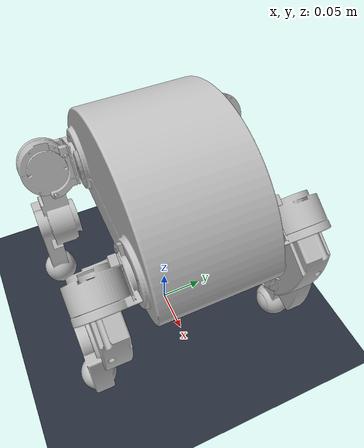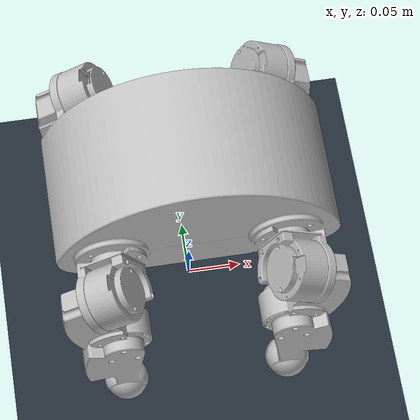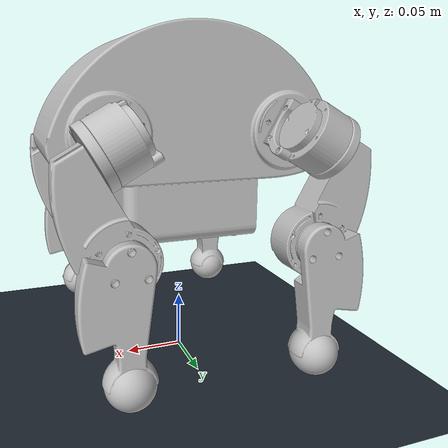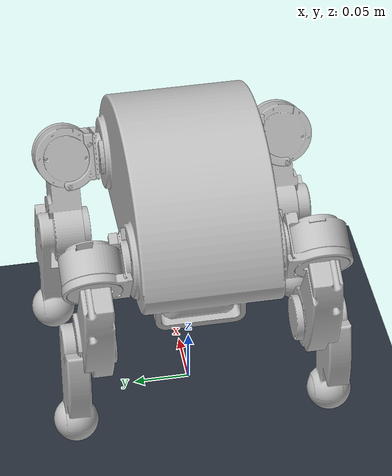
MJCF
<mujoco model="rollingquad_2">
  <compiler angle="radian" autolimits="true" meshdir="." />
  <option timestep="0.001" gravity="0 0 -9.81" integrator="implicitfast" cone="elliptic" iterations="20" ls_iterations="10" />
  <visual>
    <global azimuth="120" elevation="-18" offwidth="960" offheight="720" />
    <headlight ambient="0.35 0.35 0.35" diffuse="0.65 0.65 0.65" specular="0.20 0.20 0.20" />
  </visual>
  <asset>
    <texture type="skybox" builtin="gradient" rgb1=".18 .23 .30" rgb2=".02 .03 .05" width="512" height="512" />
    <texture name="grid" type="2d" builtin="checker" width="512" height="512" rgb1=".18 .22 .27" rgb2=".10 .13 .17" />
    <material name="ground" texture="grid" texrepeat="1 1" texuniform="true" reflectance="0.05" />
    <mesh name="Lower_leg_with_foot_1" content_type="model/stl" file="../meshes/Lower_leg_with_foot_1.stl" />
    <mesh name="Lower_leg_with_foot_1_2" content_type="model/stl" file="../meshes/Lower_leg_with_foot_1_2.stl" />
    <mesh name="Lower_leg_with_foot_mirror_1" content_type="model/stl" file="../meshes/Lower_leg_with_foot_mirror_1.stl" />
    <mesh name="Lower_leg_with_foot_mirror_1_2" content_type="model/stl" file="../meshes/Lower_leg_with_foot_mirror_1_2.stl" />
    <mesh name="Upperleg_with_motor_1" content_type="model/stl" file="../meshes/Upperleg_with_motor_1.stl" />
    <mesh name="Upperleg_with_motor_1_2" content_type="model/stl" file="../meshes/Upperleg_with_motor_1_2.stl" />
    <mesh name="Upperleg_with_motor_mirror_1" content_type="model/stl" file="../meshes/Upperleg_with_motor_mirror_1.stl" />
    <mesh name="Upperleg_with_motor_mirror_1_2" content_type="model/stl" file="../meshes/Upperleg_with_motor_mirror_1_2.stl" />
    <mesh name="abduction_mirror_1" content_type="model/stl" file="../meshes/abduction_mirror_1.stl" />
    <mesh name="abduction_mirror_1_2" content_type="model/stl" file="../meshes/abduction_mirror_1_2.stl" />
    <mesh name="abduction_1" content_type="model/stl" file="../meshes/abduction_1.stl" />
    <mesh name="abduction_1_2" content_type="model/stl" file="../meshes/abduction_1_2.stl" />
    <mesh name="torso_2" content_type="model/stl" file="../meshes/torso_2.stl" />
  </asset>
  <default>
    <joint limited="true" damping="0.01" armature="0.0016" />
    <geom contype="0" conaffinity="0" condim="3" friction="0.8 0.02 0.01" solref="0.01 1" solimp="0.9 0.95 0.001" />
    <default class="single_servo">
      <general forcelimited="true" forcerange="-3 3" ctrllimited="true" gainprm="5 0 0" biastype="affine" biasprm="0 -5 -0.1" />
    </default>
  </default>
  <worldbody>
    <light name="key" directional="true" castshadow="true" pos="-1 -2 4" dir="0.25 0.15 -1" diffuse="0.85 0.85 0.82" specular="0.20 0.20 0.20" />
    <camera name="tracking" mode="targetbody" target="torso" pos="0.55 -0.65 0.40" />
    <geom name="floor" type="plane" size="12 6 0.05" contype="1" conaffinity="0" material="ground" />
    <body name="torso" pos="0 0 0.21">
      <freejoint name="root" />
      <inertial pos="-0.000349048829 -2.267291516e-05 -0.0168232962" mass="1.47556" fullinertia="0.00473904 0.00838848 0.00826464 1.23727e-08 7.69713e-05 -7.00545e-07" />
      <geom name="torso_mesh" type="mesh" contype="0" conaffinity="0" rgba="0.749 0.749 0.749 1" mesh="torso_2" />
      <body name="front_right_hip_abduction_body" pos="0.0752002 -0.0650008 -3.15437e-07" quat="0.707105 0.707108 1.28657e-06 5.65589e-07">
        <inertial pos="0.00310332 -0.00189648 -0.160009" quat="0.969701 -0.00815916 0.0210186 -0.243253" mass="0.179903" diaginertia="7.15749e-05 5.16423e-05 4.28065e-05" />
        <joint name="front_right_hip" range="-1.745329252 1.902408885" actuatorfrcrange="-3 3" axis="0 0 1" />
        <geom name="front_right_hip_link_geom" type="mesh" contype="0" conaffinity="0" rgba="0.749 0.749 0.749 1" mesh="abduction_mirror_1" />
        <body name="front_right_thigh" pos="0.0146072 -0.00819716 -0.162001">
          <inertial pos="-0.0101991 -0.0708564 0.000226941" quat="0.617317 0.345769 -0.618182 0.342365" mass="0.18907" diaginertia="0.000132232 0.000106686 4.49875e-05" />
          <joint name="front_right_hip_abduction" range="-0.5236 3.66519" actuatorfrcrange="-3 3" axis="0.872069 -0.489382 0" />
          <geom name="front_right_thigh_geom" type="mesh" contype="0" conaffinity="0" rgba="0.749 0.749 0.749 1" mesh="Upperleg_with_motor_1_2" />
          <body name="front_right_shank" pos="-0.0137759 -0.0767678 0.01075">
            <inertial pos="0.00457242 -0.0602669 -0.0272819" quat="0.439984 0.532687 -0.48053 0.540139" mass="0.046425" diaginertia="6.03771e-05 5.63949e-05 8.99449e-06" />
            <joint name="front_right_knee" range="0.1745329252 2.094395102" actuatorfrcrange="-3 3" axis="0 0 -1" />
            <geom name="front_right_foot_proxy" type="mesh" contype="0" conaffinity="0" rgba="0.749 0.749 0.749 1" mesh="Lower_leg_with_foot_1_2" />
            <site name="front_right_foot_site" pos="0.00001796 -0.08776548 -0.02669029" size="0.004" />
            <geom name="front_right_foot_collision" type="sphere" pos="0.00001796 -0.08776548 -0.02669029" size="0.0195" contype="0" conaffinity="1" condim="3" mass="0" group="3" rgba="1 0.45 0.05 0.6" />
          </body>
        </body>
      </body>
      <body name="rear_left_hip_abduction_body" pos="-0.0752002 0.0650008 3.15437e-07" quat="0.707105 0.707108 1.28657e-06 5.65589e-07">
        <inertial pos="-0.00310332 -0.00189648 0.160009" quat="0.969701 0.00815916 0.0210186 0.243253" mass="0.179903" diaginertia="7.15749e-05 5.16423e-05 4.28065e-05" />
        <joint name="rear_left_hip" range="-1.745329252 1.902408885" actuatorfrcrange="-3 3" axis="0 0 -1" />
        <geom name="rear_left_hip_link_geom" type="mesh" contype="0" conaffinity="0" rgba="0.749 0.749 0.749 1" mesh="abduction_mirror_1_2" />
        <body name="rear_left_thigh" pos="-0.0156536 -0.00878442 0.162001">
          <inertial pos="0.0112456 -0.0702691 -0.000226941" quat="0.345769 0.617317 -0.342365 0.618182" mass="0.18907" diaginertia="0.000132232 0.000106686 4.49875e-05" />
          <joint name="rear_left_hip_abduction" range="-0.5236 3.66519" actuatorfrcrange="-3 3" axis="-0.872069 -0.489382 0" />
          <geom name="rear_left_thigh_geom" type="mesh" contype="0" conaffinity="0" rgba="0.749 0.749 0.749 1" mesh="Upperleg_with_motor_1" />
          <body name="rear_left_shank" pos="0.0148224 -0.0761805 0.014">
            <inertial pos="-0.00457242 -0.0602669 0.0025319" quat="0.532687 0.439984 -0.540139 0.48053" mass="0.046425" diaginertia="6.03771e-05 5.63949e-05 8.99449e-06" />
            <joint name="rear_left_knee" range="0.1745329252 2.094395102" actuatorfrcrange="-3 3" axis="0 0 1" />
            <geom name="rear_left_foot_proxy" type="mesh" contype="0" conaffinity="0" rgba="0.749 0.749 0.749 1" mesh="Lower_leg_with_foot_1" />
            <site name="rear_left_foot_site" pos="-0.00001796 -0.08776548 0.00194029" size="0.004" />
            <geom name="rear_left_foot_collision" type="sphere" pos="-0.00001796 -0.08776548 0.00194029" size="0.0195" contype="0" conaffinity="1" condim="3" mass="0" group="3" rgba="1 0.45 0.05 0.6" />
          </body>
        </body>
      </body>
      <body name="front_left_hip_abduction_body" pos="0.0751998 0.0650012 1.62087e-07" quat="0.707105 0.707108 1.28657e-06 5.65589e-07">
        <inertial pos="0.00284687 -0.00174682 0.15995" quat="0.969271 -0.0133055 -0.0221507 -0.244634" mass="0.179903" diaginertia="7.23188e-05 5.20415e-05 4.37798e-05" />
        <joint name="front_left_hip" range="-1.74533 1.90241" actuatorfrcrange="-3 3" />
        <geom name="front_left_hip_link_geom" type="mesh" contype="0" conaffinity="0" rgba="0.749 0.749 0.749 1" mesh="abduction_1" />
        <body name="front_left_thigh" pos="0.0146072 -0.00819716 0.162001">
          <inertial pos="-0.0103691 -0.0707641 0.000638364" quat="0.614246 0.344453 -0.621362 0.343458" mass="0.18907" diaginertia="0.000132245 0.000106711 4.4972e-05" />
          <joint name="front_left_hip_abduction" range="-0.5236 3.66519" actuatorfrcrange="-3 3" axis="-0.872069 0.489382 0" />
          <geom name="front_left_thigh_geom" type="mesh" contype="0" conaffinity="0" rgba="0.749 0.749 0.749 1" mesh="Upperleg_with_motor_mirror_1" />
          <body name="front_left_shank" pos="-0.0139503 -0.0766699 -0.00975">
            <inertial pos="0.00457242 -0.0602669 0.0272819" quat="0.48053 0.540139 -0.439984 0.532687" mass="0.046425" diaginertia="6.03771e-05 5.63949e-05 8.99449e-06" />
            <joint name="front_left_knee" range="0.17453 2.0944" actuatorfrcrange="-3 3" axis="0 0 -1" />
            <geom name="front_left_foot_proxy" type="mesh" contype="0" conaffinity="0" rgba="0.749 0.749 0.749 1" mesh="Lower_leg_with_foot_mirror_1" />
            <site name="front_left_foot_site" pos="0.00002256 -0.08782371 0.02672838" size="0.004" />
            <geom name="front_left_foot_collision" type="sphere" pos="0.00002256 -0.08782371 0.02672838" size="0.0195" contype="0" conaffinity="1" condim="3" mass="0" group="3" rgba="1 0.45 0.05 0.6" />
          </body>
        </body>
      </body>
      <body name="rear_right_hip_abduction_body" pos="-0.0751998 -0.0650012 -1.62087e-07" quat="0.707105 0.707108 1.28657e-06 5.65589e-07">
        <inertial pos="-0.00284687 -0.00174682 -0.15995" quat="0.969271 0.0133055 -0.0221507 0.244634" mass="0.179903" diaginertia="7.23188e-05 5.20415e-05 4.37798e-05" />
        <joint name="rear_right_hip" range="-1.74533 1.90241" actuatorfrcrange="-3 3" axis="0 0 -1" />
        <geom name="rear_right_hip_link_geom" type="mesh" contype="0" conaffinity="0" rgba="0.749 0.749 0.749 1" mesh="abduction_1_2" />
        <body name="rear_right_thigh" pos="-0.0146072 -0.00819716 -0.162001">
          <inertial pos="0.0103691 -0.0707641 -0.000638364" quat="0.344453 0.614246 -0.343458 0.621362" mass="0.18907" diaginertia="0.000132245 0.000106711 4.4972e-05" />
          <joint name="rear_right_hip_abduction" range="-0.5236 3.66519" actuatorfrcrange="-3 3" axis="0.872069 0.489382 0" />
          <geom name="rear_right_thigh_geom" type="mesh" contype="0" conaffinity="0" rgba="0.749 0.749 0.749 1" mesh="Upperleg_with_motor_mirror_1_2" />
          <body name="rear_right_shank" pos="0.0139503 -0.0766699 0.00975">
            <inertial pos="-0.00457242 -0.0602669 -0.0272819" quat="0.540139 0.48053 -0.532687 0.439984" mass="0.046425" diaginertia="6.03771e-05 5.63949e-05 8.99449e-06" />
            <joint name="rear_right_knee" range="0.17453 2.0944" actuatorfrcrange="-3 3" axis="0 0 1" />
            <geom name="rear_right_foot_proxy" type="mesh" contype="0" conaffinity="0" rgba="0.749 0.749 0.749 1" mesh="Lower_leg_with_foot_mirror_1_2" />
            <site name="rear_right_foot_site" pos="-0.00002256 -0.08782371 -0.02672838" size="0.004" />
            <geom name="rear_right_foot_collision" type="sphere" pos="-0.00002256 -0.08782371 -0.02672838" size="0.0195" contype="0" conaffinity="1" condim="3" mass="0" group="3" rgba="1 0.45 0.05 0.6" />
          </body>
        </body>
      </body>
    </body>
  </worldbody>
  <actuator>
    <general name="front_left_hip_abduction_servo" joint="front_left_hip_abduction" class="single_servo" ctrlrange="-0.5236 3.66519" />
    <general name="front_left_hip_servo" joint="front_left_hip" class="single_servo" ctrlrange="-1.74533 1.90241" />
    <general name="front_left_knee_servo" joint="front_left_knee" class="single_servo" ctrlrange="0.17453 2.0944" />
    <general name="front_right_hip_abduction_servo" joint="front_right_hip_abduction" class="single_servo" ctrlrange="-0.5236 3.66519" />
    <general name="front_right_hip_servo" joint="front_right_hip" class="single_servo" ctrlrange="-1.745329252 1.902408885" />
    <general name="front_right_knee_servo" joint="front_right_knee" class="single_servo" ctrlrange="0.1745329252 2.094395102" />
    <general name="rear_left_hip_abduction_servo" joint="rear_left_hip_abduction" class="single_servo" ctrlrange="-0.5236 3.66519" />
    <general name="rear_left_hip_servo" joint="rear_left_hip" class="single_servo" ctrlrange="-1.745329252 1.902408885" />
    <general name="rear_left_knee_servo" joint="rear_left_knee" class="single_servo" ctrlrange="0.1745329252 2.094395102" />
    <general name="rear_right_hip_abduction_servo" joint="rear_right_hip_abduction" class="single_servo" ctrlrange="-0.5236 3.66519" />
    <general name="rear_right_hip_servo" joint="rear_right_hip" class="single_servo" ctrlrange="-1.74533 1.90241" />
    <general name="rear_right_knee_servo" joint="rear_right_knee" class="single_servo" ctrlrange="0.17453 2.0944" />
  </actuator>
  <sensor>
    <framequat name="base_quat" objtype="body" objname="torso" />
    <framepos name="base_position" objtype="body" objname="torso" />
    <framelinvel name="base_linear_velocity" objtype="body" objname="torso" />
    <frameangvel name="base_angular_velocity" objtype="body" objname="torso" />
    <jointpos name="front_right_hip_position" joint="front_right_hip" />
    <jointpos name="front_right_hip_abduction_position" joint="front_right_hip_abduction" />
    <jointpos name="front_right_knee_position" joint="front_right_knee" />
    <jointpos name="rear_left_hip_position" joint="rear_left_hip" />
    <jointpos name="rear_left_hip_abduction_position" joint="rear_left_hip_abduction" />
    <jointpos name="rear_left_knee_position" joint="rear_left_knee" />
    <jointpos name="front_left_hip_position" joint="front_left_hip" />
    <jointpos name="front_left_hip_abduction_position" joint="front_left_hip_abduction" />
    <jointpos name="front_left_knee_position" joint="front_left_knee" />
    <jointpos name="rear_right_hip_position" joint="rear_right_hip" />
    <jointpos name="rear_right_hip_abduction_position" joint="rear_right_hip_abduction" />
    <jointpos name="rear_right_knee_position" joint="rear_right_knee" />
  </sensor>
  <keyframe>
    <key name="open" qpos="0 0 0.1934653619 1 0 0 0                0 -0.2617993878 0                0 0.2617993878 0                0 -0.2617993878 0                0 0.2617993878 0" ctrl="-0.2617993878 0 0                -0.2617993878 0 0                0.2617993878 0 0                0.2617993878 0 0" />
    <key name="stand" qpos="0 0 0.1580029248 1 0 0 0                0.90 0 1.15                0.90 0 1.15                0.90 0 1.15                0.90 0 1.15" ctrl="0 0.90 1.15                0 0.90 1.15                0 0.90 1.15                0 0.90 1.15" />
    <key name="stand_previous" qpos="0 0 0.1867435755 1 0 0 0                0.33532733 -0.2617993878 0.53234438                0.33532733 0.2617993878 0.53234438                0.33532733 -0.2617993878 0.53234438                0.33532733 0.2617993878 0.53234438" ctrl="-0.2617993878 0.33532733 0.53234438                -0.2617993878 0.33532733 0.53234438                0.2617993878 0.33532733 0.53234438                0.2617993878 0.33532733 0.53234438" />
    <key name="park" qpos="0 0 0.1817521174 1 0 0 0                0.4983797927 -0.2617993878 0.3491569025                0.434095281 0.2617993878 0.0107701707                0.4983797927 -0.2617993878 0.3491569025                0.434095281 0.2617993878 0.0107701707" ctrl="-0.2617993878 0.4983797927 0.3491569025                -0.2617993878 0.4983797927 0.3491569025                0.2617993878 0.434095281 0.0107701707                0.2617993878 0.434095281 0.0107701707" />
    <key name="compact" qpos="0 0 0.1662524149 1 0 0 0                0.1108283051 -0.2617993878 0.9092586986                0.1108283051 0.2617993878 0.9092586986                0.1108283051 -0.2617993878 0.9092586986                0.1108283051 0.2617993878 0.9092586986" ctrl="-0.2617993878 0.1108283051 0.9092586986                -0.2617993878 0.1108283051 0.9092586986                0.2617993878 0.1108283051 0.9092586986                0.2617993878 0.1108283051 0.9092586986" />
    <key name="extended" qpos="0 0 0.1921257790 1 0 0 0  0 -0.2617993878 0.1745329252  0 0.2617993878 0.1745329252  0 -0.2617993878 0.1745329252  0 0.2617993878 0.1745329252" ctrl="-0.2617993878 0 0.1745329252  -0.2617993878 0 0.1745329252  0.2617993878 0 0.1745329252  0.2617993878 0 0.1745329252" />
  </keyframe>
</mujoco>
